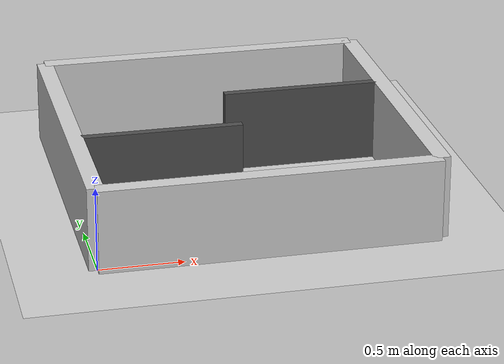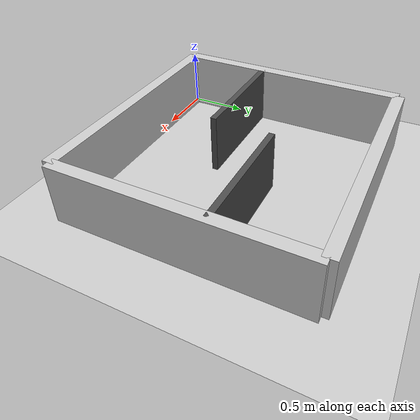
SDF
<?xml version="1.0" ?>
<sdf version="1.8">
  <world name="my_square_world">

    <plugin filename="gz-sim-physics-system" name="gz::sim::systems::Physics" />
    <plugin filename="gz-sim-sensors-system" name="gz::sim::systems::Sensors">
      <render_engine>ogre2</render_engine>
    </plugin>
    <plugin filename="gz-sim-scene-broadcaster-system" name="gz::sim::systems::SceneBroadcaster" />
    <plugin filename="gz-sim-user-commands-system" name="gz::sim::systems::UserCommands" />

    <include>
      <uri>https://fuel.gazebosim.org/1.0/OpenRobotics/models/Sun</uri>
    </include>
    <include>
      <uri>https://fuel.gazebosim.org/1.0/OpenRobotics/models/Ground Plane</uri>
    </include>

    <physics type="ode">
      <max_step_size>0.001</max_step_size>
      <real_time_factor>1.0</real_time_factor>
    </physics>

    <model name="wall_bottom">
      <pose>1 0 0.25 0 0 0</pose>
      <static>true</static>
      <link name="link">
        <collision name="collision">
          <geometry><box><size>2.0 0.1 0.5</size></box></geometry>
        </collision>
        <visual name="visual">
          <geometry><box><size>2.0 0.1 0.5</size></box></geometry>
          <material><ambient>0.5 0.5 0.5 1</ambient><diffuse>0.8 0.8 0.8 1</diffuse></material>
        </visual>
      </link>
    </model>

    <model name="wall_top">
      <pose>1 2 0.25 0 0 0</pose>
      <static>true</static>
      <link name="link">
        <collision name="collision">
          <geometry><box><size>2.0 0.1 0.5</size></box></geometry>
        </collision>
        <visual name="visual">
          <geometry><box><size>2.0 0.1 0.5</size></box></geometry>
          <material><ambient>0.5 0.5 0.5 1</ambient><diffuse>0.8 0.8 0.8 1</diffuse></material>
        </visual>
      </link>
    </model>

    <model name="wall_left">
      <pose>0 1 0.25 0 0 1.5708</pose>
      <static>true</static>
      <link name="link">
        <collision name="collision">
          <geometry><box><size>2.0 0.1 0.5</size></box></geometry>
        </collision>
        <visual name="visual">
          <geometry><box><size>2.0 0.1 0.5</size></box></geometry>
          <material><ambient>0.5 0.5 0.5 1</ambient><diffuse>0.8 0.8 0.8 1</diffuse></material>
        </visual>
      </link>
    </model>

    <model name="wall_right">
      <pose>2 1 0.25 0 0 1.5708</pose>
      <static>true</static>
      <link name="link">
        <collision name="collision">
          <geometry><box><size>2.0 0.1 0.5</size></box></geometry>
        </collision>
        <visual name="visual">
          <geometry><box><size>2.0 0.1 0.5</size></box></geometry>
          <material><ambient>0.5 0.5 0.5 1</ambient><diffuse>0.8 0.8 0.8 1</diffuse></material>
        </visual>
      </link>
    </model>

    <model name="obstacle_1">
      <pose>0.5 0.75 0.25 0 0 0</pose> <static>true</static>
      <link name="link">
        <collision name="collision">
          <geometry><box><size>1.0 0.05 0.5</size></box></geometry>
        </collision>
        <visual name="visual">
          <geometry><box><size>1.0 0.05 0.5</size></box></geometry>
          <material><ambient>0.2 0.2 0.2 1</ambient><diffuse>0.3 0.3 0.3 1</diffuse></material>
        </visual>
      </link>
    </model>

    <model name="obstacle_2">
      <pose>1.5 1.25 0.25 0 0 0</pose> <static>true</static>
      <link name="link">
        <collision name="collision">
          <geometry><box><size>1.0 0.05 0.5</size></box></geometry>
        </collision>
        <visual name="visual">
          <geometry><box><size>1.0 0.05 0.5</size></box></geometry>
          <material><ambient>0.2 0.2 0.2 1</ambient><diffuse>0.3 0.3 0.3 1</diffuse></material>
        </visual>
      </link>
    </model>

  </world>
</sdf>
